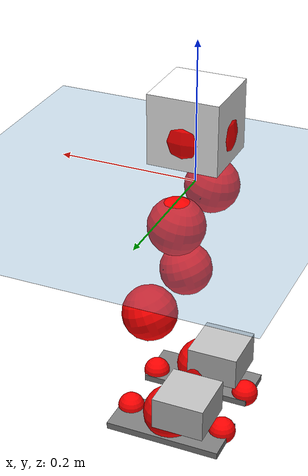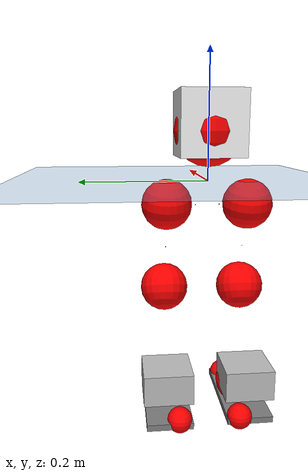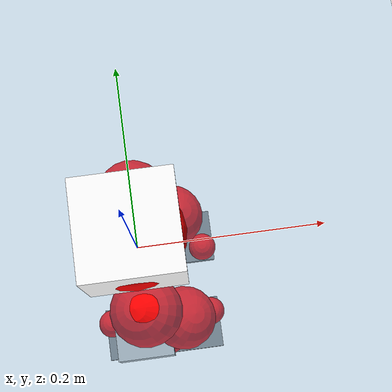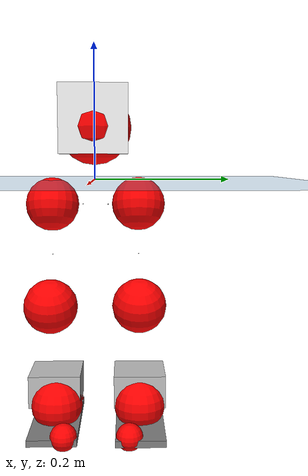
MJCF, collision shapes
<mujoco model="pi_12dof_release_v1">
  <compiler angle="radian" assetdir="assets" balanceinertia="true" inertiafromgeom="false"/>

  <option timestep="0.005" density="1.2" viscosity="2e-05"/>

  <size nkey="1"/>

  <visual>
    <quality shadowsize="8192"/>
    <map shadowclip="0.5"/>
  </visual>

  <default>
    <default class="/">
      <joint armature="0.01" damping="0.01" frictionloss="0.01"/>
      <geom contype="0" conaffinity="0" group="1" solref="-1000 -80"/>
      <site size="0.01 0.005 0.005" group="5"/>
      <general forcelimited="true" biastype="affine" gainprm="20" biasprm="0 -20 -0.5"/>
      <default class="foot">
        <geom size="0.0845 0.036 0.005" type="box" condim="6" group="4" priority="1" friction="0.9 0.2 0.2" solimp="0.015 1 0.005"/>
      </default>
      <default class="reward_collision_sphere">
        <geom group="5" rgba="1 0 0 1"/>
      </default>
    </default>
  </default>

  <asset>
    <texture type="skybox" colorspace="auto" name="//unnamed_texture_0" builtin="gradient" rgb1="0.95 0.95 0.95" rgb2="0.95 0.95 0.95" width="100" height="600"/>
    <texture type="2d" colorspace="auto" name="texplane" builtin="checker" rgb1="0.345 0.575 0.748" rgb2="0.345 0.575 0.748" markrgb="1 1 1" width="512" height="512"/>
    <material name="MatPlane" class="/" texture="texplane" texuniform="true" texrepeat="2 2" specular="0.9"/>
    <mesh name="baselink_1" class="/" file="baselink_1.STL"/>
    <mesh name="r_hip_pitch_link" class="/" file="r_hip_pitch_link.STL"/>
    <mesh name="r_hip_roll_link" class="/" file="r_hip_roll_link.STL"/>
    <mesh name="r_thigh_link" class="/" file="r_thigh_link.STL"/>
    <mesh name="r_calf_link" class="/" file="r_calf_link.STL"/>
    <mesh name="r_ankle_pitch_link" class="/" file="r_ankle_pitch_link.STL"/>
    <mesh name="r_ankle_roll_link" class="/" file="r_ankle_roll_link.STL"/>
    <mesh name="l_hip_pitch_link" class="/" file="l_hip_pitch_link.STL"/>
    <mesh name="l_hip_roll_link" class="/" file="l_hip_roll_link.STL"/>
    <mesh name="l_thigh_link" class="/" file="l_thigh_link.STL"/>
    <mesh name="l_calf_link" class="/" file="l_calf_link.STL"/>
    <mesh name="l_ankle_pitch_link" class="/" file="l_ankle_pitch_link.STL"/>
    <mesh name="l_ankle_roll_link" class="/" file="l_ankle_roll_link.STL"/>
  </asset>

  <worldbody>
    <geom name="floor" class="/" size="100 100 0.125" type="plane" group="0" material="MatPlane"/>
    <light name="toplight_shadow" class="/" pos="0 0 5" dir="0.0990148 0.0990148 -0.990148" type="directional" ambient="0.04 0.04 0.04" diffuse="0.55 0.55 0.55" specular="0.12 0.12 0.12"/>
    <light name="toplight_fill" class="/" pos="0 0 5" dir="0.0990148 0.0990148 -0.990148" type="directional" castshadow="false" ambient="0.04 0.04 0.04" diffuse="0.3 0.3 0.3" specular="0.08 0.08 0.08"/>
    <body name="trunk" pos="-6.01189e-05 -0.00012301 -0.000286899" quat="1 3.64872e-06 -2.69922e-05 -1.92105e-05">
      <inertial pos="0.00315267 -0.00120098 0.0443888" quat="0.695189 0.00891974 0.00887932 0.718717" mass="2.1465" diaginertia="0.0139461 0.00309202 0.00668242"/>
      <joint name="//unnamed_joint_0" type="free"/>
      <geom name="//unnamed_geom_1" class="/" type="mesh" density="0" rgba="1 1 1 1" mesh="baselink_1"/>
      <geom name="//unnamed_geom_2" class="/" size="0.0496185 0.0496185 0.0496185" pos="0 0 0.0878508" type="box" rgba="1 1 1 1"/>
      <geom name="//unnamed_geom_3" class="reward_collision_sphere" size="0.0545803" pos="0 0 0.0768695"/>
      <site name="imu" class="/" pos="0.00188661 -0.00392171 0.0036455" size="0.00992369"/>
      <camera name="track" class="/" pos="0 -1.61442 0" quat="0.707107 0.707107 0 0" mode="trackcom"/>
      <camera name="ego_camera" class="/" pos="0.080382 0 0.197664" quat="-0.5 -0.5 0.5 0.5"/>
      <body name="r_hip_pitch_link" pos="-0.000566975 -0.0183306 -0.0362449" quat="0.992198 1.93321e-05 -0.124669 5.94132e-05">
        <inertial pos="0.00162503 -0.0450573 0.000215967" quat="-0.0184155 0.706164 -0.0276012 0.70727" mass="0.365149" diaginertia="0.000153367 3.37534e-05 0.00013392"/>
        <joint name="r_hip_pitch_joint" class="/" pos="0 0 0" axis="0.000678817 -1 0.00011586" range="-1.73828 1.24064" armature="0.00988818" damping="0.0118775" frictionloss="0.0100311"/>
        <geom name="//unnamed_geom_4" class="/" type="mesh" density="0" rgba="0.75294 0.75294 0.75294 1" mesh="r_hip_pitch_link"/>
        <geom name="//unnamed_geom_5" class="/" size="0.000496185 0.000496185 0.000496185" type="box" rgba="0.75294 0.75294 0.75294 1"/>
        <body name="r_hip_roll_link" pos="0.000188815 -0.0455542 -0.000238555" quat="1 0.0001395 -8.79995e-05 -3.79785e-05">
          <inertial pos="-0.00181131 -3.77179e-05 -0.0679899" quat="0.705424 -0.0796436 -0.0837944 0.699294" mass="0.383951" diaginertia="0.000477623 9.5774e-05 0.000207865"/>
          <joint name="r_hip_roll_joint" class="/" pos="0 0 0" axis="-0.999993 -0.000124324 -0.00367725" stiffness="0.000412947" range="-0.118386 0.498297" armature="0.00966618" damping="0.0087197" frictionloss="0.0095144"/>
          <geom name="//unnamed_geom_6" class="/" type="mesh" density="0" rgba="0.75294 0.75294 0.75294 1" mesh="r_hip_roll_link"/>
          <geom name="//unnamed_geom_7" class="/" size="0.000496185 0.000496185 0.000496185" type="box" rgba="0.75294 0.75294 0.75294 1"/>
          <geom name="//unnamed_geom_8" class="reward_collision_sphere" size="0.0396948"/>
          <body name="r_thigh_link" pos="-5.92873e-05 0.0011435 -0.0754626" quat="1 -4.86905e-05 -5.62898e-05 0.000136172">
            <inertial pos="-0.000133705 0.000734574 -0.0524695" quat="0.737661 0.675171 -0.000202234 0.000273384" mass="0.110155" diaginertia="0.000177012 3.23342e-05 9.25869e-05"/>
            <joint name="r_thigh_joint" class="/" pos="0 0 0" axis="-0.00126159 0.000750013 -0.999999" range="-0.290501 0.582527" armature="0.00970593" damping="0" frictionloss="0.00979495"/>
            <geom name="//unnamed_geom_9" class="/" type="mesh" density="0" rgba="0.75294 0.75294 0.75294 1" mesh="r_thigh_link"/>
            <geom name="//unnamed_geom_10" class="/" size="0.000496185 0.000496185 0.000496185" type="box" rgba="0.75294 0.75294 0.75294 1"/>
            <body name="r_calf_link" pos="0.000289234 -0.00206704 -0.0771487" quat="0.947675 -0.000246269 0.319238 -2.4269e-05">
              <inertial pos="6.97523e-05 -0.000799285 -0.0769461" quat="0.999984 -0.00313423 0.00190083 0.00431162" mass="0.795618" diaginertia="0.00497811 0.00119158 0.00027778"/>
              <joint name="r_calf_joint" class="/" pos="0 0 0" axis="3.5378e-05 -1 -0.000136388" range="-1.64938 0.634473" armature="0.00990229" damping="0.00914265" frictionloss="0.00978157"/>
              <geom name="//unnamed_geom_11" class="/" type="mesh" density="0" rgba="0.75294 0.75294 0.75294 1" mesh="r_calf_link"/>
              <geom name="//unnamed_geom_12" class="/" size="0.000496185 0.000496185 0.000496185" type="box" rgba="0.75294 0.75294 0.75294 1"/>
              <geom name="//unnamed_geom_13" class="reward_collision_sphere" size="0.0396948"/>
              <body name="r_ankle_pitch_link" pos="-0.000349131 0.000528621 -0.152239" quat="0.980101 -1.70411e-05 -0.1985 2.07723e-05">
                <inertial pos="0.00570103 0.00283916 -0.00043447" quat="0.00138132 0.707225 -0.00413392 0.706975" mass="0.170234" diaginertia="0.000434815 7.66002e-05 0.000190537"/>
                <joint name="r_ankle_pitch_joint" class="/" pos="0 0 0" axis="-0.00543502 -0.999985 0.00113146" range="-1.28387 0.50145" armature="0.00992108" damping="0.0117703" frictionloss="0.0100157"/>
                <geom name="//unnamed_geom_14" class="/" type="mesh" density="0" rgba="0.75294 0.75294 0.75294 1" mesh="r_ankle_pitch_link"/>
                <geom name="//unnamed_geom_15" class="/" size="0.0387024 0.0396948 0.0248092" type="box" rgba="0.75294 0.75294 0.75294 1"/>
                <body name="r_ankle_roll_link" pos="0.0812592 0.00286954 -2.74779e-05" quat="1 -0.000155573 -8.81196e-06 -0.000103672">
                  <inertial pos="-0.0260166 0.000317709 -0.0167492" quat="0.561377 0.428707 0.43332 0.559732" mass="0.506549" diaginertia="0.00160829 0.000352393 0.000457979"/>
                  <joint name="r_ankle_roll_joint" class="/" pos="0 0 0" axis="-1 -0.000187331 -0.000641145" range="-0.16298 0.134869" armature="0.0101229" damping="0.0117038" frictionloss="0.00993506"/>
                  <geom name="//unnamed_geom_16" class="/" type="mesh" density="0" rgba="0.75294 0.75294 0.75294 1" mesh="r_ankle_roll_link"/>
                  <geom name="//unnamed_geom_17" class="/" type="mesh" rgba="0.75294 0.75294 0.75294 1" mesh="r_ankle_roll_link"/>
                  <geom name="right_foot" class="foot" size="0.082231 0.0362742 0.00480215" pos="-0.0546598 0 -0.048318"/>
                  <geom name="//unnamed_geom_19" class="reward_collision_sphere" size="0.0396948" pos="-0.053588 0 -0.0219627"/>
                  <geom name="//unnamed_geom_20" class="reward_collision_sphere" size="0.0198474" pos="0.0160764 0.0161442 -0.0439254"/>
                  <geom name="//unnamed_geom_21" class="reward_collision_sphere" size="0.0198474" pos="-0.128611 0.0161442 -0.0439254"/>
                  <site name="right_foot" class="foot" pos="-0.0546598 0 -0.048318" size="0.00992369"/>
                </body>
              </body>
            </body>
          </body>
        </body>
      </body>
      <body name="l_hip_pitch_link" pos="-0.000246477 0.0193984 -0.0364606" quat="0.992176 6.76373e-05 -0.124846 -6.90335e-05">
        <inertial pos="0.00121096 0.0435088 -0.000927594" quat="-0.0385129 0.70577 0.0298208 0.706765" mass="0.385429" diaginertia="0.000184386 3.63196e-05 0.000163929"/>
        <joint name="l_hip_pitch_joint" class="/" pos="0 0 0" axis="-0.00116631 0.999999 -0.000722188" range="-1.25128 1.76352" armature="0.00989254" damping="0.00738918" frictionloss="0.00960192"/>
        <geom name="//unnamed_geom_22" class="/" type="mesh" density="0" rgba="0.75294 0.75294 0.75294 1" mesh="l_hip_pitch_link"/>
        <geom name="//unnamed_geom_23" class="/" size="0.000496185 0.000496185 0.000496185" type="box" rgba="0.75294 0.75294 0.75294 1"/>
        <body name="l_hip_roll_link" pos="-2.84891e-05 0.0455992 0.000695412" quat="1 0.000375427 0.000119852 0.000171591">
          <inertial pos="-0.000564453 0.000696272 -0.0678262" quat="0.699197 -0.0752826 -0.0780018 0.706663" mass="0.383827" diaginertia="0.000475125 9.60903e-05 0.000204829"/>
          <joint name="l_hip_roll_joint" class="/" pos="0 0 0" axis="-0.999999 -0.000365627 -0.00154723" range="-0.500274 0.133249" armature="0.0102802" damping="0.000549815" frictionloss="0.0099253"/>
          <geom name="//unnamed_geom_24" class="/" type="mesh" density="0" rgba="0.75294 0.75294 0.75294 1" mesh="l_hip_roll_link"/>
          <geom name="//unnamed_geom_25" class="/" size="0.000496185 0.000496185 0.000496185" type="box" rgba="0.75294 0.75294 0.75294 1"/>
          <geom name="//unnamed_geom_26" class="reward_collision_sphere" size="0.0396948"/>
          <body name="l_thigh_link" pos="0.000683527 -0.000211655 -0.0755835" quat="1 -6.04425e-05 0.000311929 -0.000258335">
            <inertial pos="0.000243671 -0.00223989 -0.0529183" quat="0.676011 0.736891 -0.000681391 6.7699e-05" mass="0.111085" diaginertia="0.000178841 3.30332e-05 9.31796e-05"/>
            <joint name="l_thigh_joint" class="/" pos="0 0 0" axis="0.00114248 0.000711822 -0.999999" range="-0.600126 0.293847" armature="0.0096828" damping="0.00686652" frictionloss="0.0101348"/>
            <geom name="//unnamed_geom_27" class="/" type="mesh" density="0" rgba="0.75294 0.75294 0.75294 1" mesh="l_thigh_link"/>
            <geom name="//unnamed_geom_28" class="/" size="0.000496185 0.000496185 0.000496185" type="box" rgba="0.75294 0.75294 0.75294 1"/>
            <body name="l_calf_link" pos="0.000428675 0.000466582 -0.0770811" quat="0.947696 1.70223e-05 0.319174 0.000121379">
              <inertial pos="0.00121928 0.00340574 -0.0764836" quat="0.999979 0.00351448 8.38794e-05 0.00535212" mass="0.790889" diaginertia="0.00499954 0.00120649 0.000277446"/>
              <joint name="l_calf_joint" class="/" pos="0 0 0" axis="0.00367286 0.999984 0.00429159" range="-0.641617 1.65055" armature="0.0101559" damping="0.0122866" frictionloss="0.00949637"/>
              <geom name="//unnamed_geom_29" class="/" type="mesh" density="0" rgba="0.75294 0.75294 0.75294 1" mesh="l_calf_link"/>
              <geom name="//unnamed_geom_30" class="/" size="0.000496185 0.000496185 0.000496185" type="box" rgba="0.75294 0.75294 0.75294 1"/>
              <geom name="//unnamed_geom_31" class="reward_collision_sphere" size="0.0396948"/>
              <body name="l_ankle_pitch_link" pos="0.000305401 0.00118906 -0.153491" quat="0.980081 -4.90825e-05 -0.1986 -9.68919e-05">
                <inertial pos="0.00470647 0.000129536 -0.000133178" quat="-0.00338573 0.705935 -0.00161372 0.708267" mass="0.170179" diaginertia="0.00043085 7.56265e-05 0.000191693"/>
                <joint name="l_ankle_pitch_joint" class="/" pos="0 0 0" axis="-0.000748704 0.999999 0.00120534" range="-0.486862 1.29545" armature="0.0100744" damping="0.000438485" frictionloss="0.0102729"/>
                <geom name="//unnamed_geom_32" class="/" type="mesh" density="0" rgba="0.75294 0.75294 0.75294 1" mesh="l_ankle_pitch_link"/>
                <geom name="//unnamed_geom_33" class="/" size="0.0387024 0.0396948 0.0248092" type="box" rgba="0.75294 0.75294 0.75294 1"/>
                <body name="l_ankle_roll_link" pos="0.080465 -0.00018241 2.026e-05" quat="1 0.000220798 -9.80996e-05 -0.000166085">
                  <inertial pos="-0.0258453 -0.000370125 -0.0161776" quat="0.559478 0.43137 0.434105 0.558979" mass="0.49923" diaginertia="0.00157962 0.000346991 0.000447962"/>
                  <joint name="l_ankle_roll_joint" class="/" pos="0 0 0" axis="-1 -0.000368519 3.41001e-05" range="-0.151162 0.139966" armature="0.0100091" damping="0.0119291" frictionloss="0.010182"/>
                  <geom name="//unnamed_geom_34" class="/" type="mesh" density="0" rgba="0.75294 0.75294 0.75294 1" mesh="l_ankle_roll_link"/>
                  <geom name="//unnamed_geom_35" class="/" type="mesh" rgba="0.75294 0.75294 0.75294 1" mesh="l_ankle_roll_link"/>
                  <geom name="left_foot" class="foot" size="0.086292 0.0365214 0.00504768" pos="-0.0546598 0 -0.048318"/>
                  <geom name="//unnamed_geom_37" class="reward_collision_sphere" size="0.0396948" pos="-0.053588 0 -0.0219627"/>
                  <geom name="//unnamed_geom_38" class="reward_collision_sphere" size="0.0198474" pos="0.0160764 -0.0161442 -0.0439254"/>
                  <geom name="//unnamed_geom_39" class="reward_collision_sphere" size="0.0198474" pos="-0.128611 -0.0161442 -0.0439254"/>
                  <site name="left_foot" class="foot" pos="-0.0546598 0 -0.048318" size="0.00992369"/>
                </body>
              </body>
            </body>
          </body>
        </body>
      </body>
    </body>
  </worldbody>

  <contact>
    <pair class="/" geom1="floor" geom2="right_foot" name="//unnamed_contact_1"/>
    <pair class="/" geom1="floor" geom2="left_foot" name="//unnamed_contact_0"/>
  </contact>

  <actuator>
    <general name="r_hip_pitch_joint" class="/" joint="r_hip_pitch_joint" forcerange="-20.538 20.538" gainprm="19.5959" biasprm="0 -19.5959 -0.502002"/>
    <general name="r_hip_roll_joint" class="/" joint="r_hip_roll_joint" forcerange="-20.4642 20.4642" gainprm="19.5959" biasprm="0 -19.5959 -0.502002"/>
    <general name="r_thigh_joint" class="/" joint="r_thigh_joint" forcerange="-20.9632 20.9632" gainprm="19.5959" biasprm="0 -19.5959 -0.502002"/>
    <general name="r_calf_joint" class="/" joint="r_calf_joint" forcerange="-21.3251 21.3251" gainprm="19.5959" biasprm="0 -19.5959 -0.502002"/>
    <general name="r_ankle_pitch_joint" class="/" joint="r_ankle_pitch_joint" forcerange="-21.071 21.071" gainprm="19.5959" biasprm="0 -19.5959 -0.502002"/>
    <general name="r_ankle_roll_joint" class="/" joint="r_ankle_roll_joint" forcerange="-20.4501 20.4501" gainprm="19.5959" biasprm="0 -19.5959 -0.502002"/>
    <general name="l_hip_pitch_joint" class="/" joint="l_hip_pitch_joint" forcerange="-20.7906 20.7906" gainprm="19.5959" biasprm="0 -19.5959 -0.502002"/>
    <general name="l_hip_roll_joint" class="/" joint="l_hip_roll_joint" forcerange="-21.1116 21.1116" gainprm="19.5959" biasprm="0 -19.5959 -0.502002"/>
    <general name="l_thigh_joint" class="/" joint="l_thigh_joint" forcerange="-20.2527 20.2527" gainprm="19.5959" biasprm="0 -19.5959 -0.502002"/>
    <general name="l_calf_joint" class="/" joint="l_calf_joint" forcerange="-20.6801 20.6801" gainprm="19.5959" biasprm="0 -19.5959 -0.502002"/>
    <general name="l_ankle_pitch_joint" class="/" joint="l_ankle_pitch_joint" forcerange="-20.3044 20.3044" gainprm="19.5959" biasprm="0 -19.5959 -0.502002"/>
    <general name="l_ankle_roll_joint" class="/" joint="l_ankle_roll_joint" forcerange="-20.7664 20.7664" gainprm="19.5959" biasprm="0 -19.5959 -0.502002"/>
  </actuator>

  <sensor>
    <gyro site="imu" name="imu_angular_velocity"/>
    <velocimeter site="imu" name="imu_linear_velocity"/>
    <framelinvel objtype="site" objname="left_foot" name="left_foot_global_linear_velocity"/>
    <framelinvel objtype="site" objname="right_foot" name="right_foot_global_linear_velocity"/>
  </sensor>

  <keyframe>
    <key name="home" qpos="0 0 0.291 1 0 0 0 0.4 0 0 -0.8 0.4 0 -0.4 0 0 0.8 -0.4 0"/>
  </keyframe>
</mujoco>
